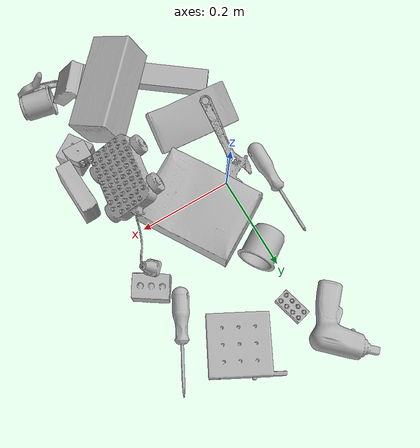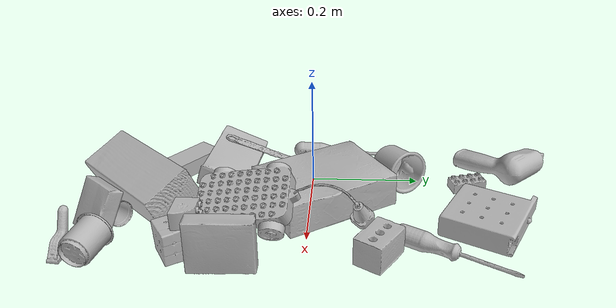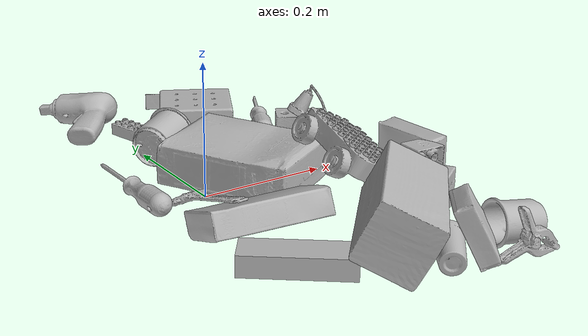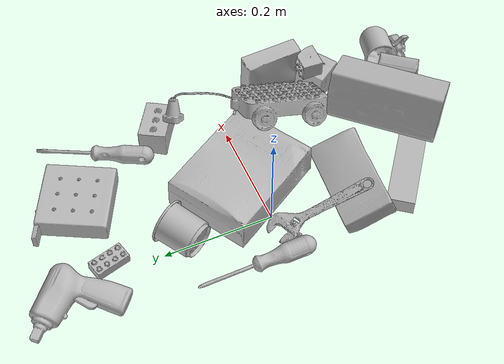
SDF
<sdf version="1.4">
  <world name="default">
    <light name="light1" type="point">
      <pose>0 0 1 0 0 0</pose>
      <diffuse>3 3 3 1</diffuse>
      <specular>3 3 3 1</specular>
    </light>
    <light name="light2" type="point">
      <pose>0 0.5 2 0 0 0</pose>
      <diffuse>1 1 1 1</diffuse>
      <specular>1 1 1 1</specular>
    </light>
    <light name="light3" type="point">
      <pose>0 0.5 2 0 0 0</pose>
      <diffuse>3 3 3 1</diffuse>
      <specular>3 3 3 1</specular>
    </light>
    <scene>
      <ambient>0.7 0.7 0.7</ambient>
    </scene>
    <model name="box21">
      <link name="link_box21">
        <collision name="default">
          <geometry>
            <mesh>
              <uri>model://cracker_box/collision_meshes/collision.obj</uri>
              <scale>1.0 1.0 1.0</scale>
            </mesh>
          </geometry>
          <surface>
            <friction>
              <ode>
                <mu>0.5</mu>
                <mu2>0.5</mu2>
              </ode>
            </friction>
          <contact>
        <ode>
            <max_vel>0</max_vel>
            <min_depth>0.0001</min_depth>
            <kp>1e8</kp>
        </ode>
    </contact></surface>
        </collision>
        <visual name="default">
          <geometry>
            <mesh>
              <uri>model://cracker_box/visual_meshes/visual.dae</uri>
              <scale>1.0 1.0 1.0</scale>
            </mesh>
          </geometry>
        </visual>
        <inertial>
          <mass>2.967785358428955</mass>
          <pose>0.0009464151808060706 0.00025434247800149024 -0.0017029535956680775 -0.0003162076618733006 -0.011106490531610344 0.00254679570085012</pose>
          <inertia>
            <ixx>0.0075487206</ixx>
            <iyy>0.012464421</iyy>
            <izz>0.017787872</izz>
            <ixy>0</ixy>
            <ixz>0</ixz>
            <iyz>0</iyz>
          </inertia>
        </inertial>
      </link>
      <pose>0.0809539332985878 0.022818230092525482 0.03648179769515991 -0.011788515821407993 -0.007367166360149208 2.108229948049238</pose>
    </model>
    <model name="box22">
      <link name="link_box22">
        <collision name="default">
          <geometry>
            <mesh>
              <uri>model://rubiks_cube/collision_meshes/collision.obj</uri>
              <scale>1.0 1.0 1.0</scale>
            </mesh>
          </geometry>
          <surface>
            <friction>
              <ode>
                <mu>0.5</mu>
                <mu2>0.5</mu2>
              </ode>
            </friction>
          <contact>
        <ode>
            <max_vel>0</max_vel>
            <min_depth>0.0001</min_depth>
            <kp>1e8</kp>
        </ode>
    </contact></surface>
        </collision>
        <visual name="default">
          <geometry>
            <mesh>
              <uri>model://rubiks_cube/visual_meshes/visual.dae</uri>
              <scale>1.0 1.0 1.0</scale>
            </mesh>
          </geometry>
        </visual>
        <inertial>
          <mass>0.2631562352180481</mass>
          <pose>2.6721041649580002e-05 5.2569666877388954e-05 -7.264316082000732e-06 -0.05467275409565722 -0.09814109117242276 -0.03445701547045584</pose>
          <inertia>
            <ixx>0.0001454115</ixx>
            <iyy>0.00014473335</iyy>
            <izz>0.00014661645</izz>
            <ixy>0</ixy>
            <ixz>0</ixz>
            <iyz>0</iyz>
          </inertia>
        </inertial>
      </link>
      <pose>0.24443329870700836 -0.20459626615047455 0.02905971370637417 -3.134143242042474 0.010888946502047534 -1.0232892608926905</pose>
    </model>
    <model name="box23">
      <link name="link_box23">
        <collision name="default">
          <geometry>
            <mesh>
              <uri>model://pudding_box/collision_meshes/collision.obj</uri>
              <scale>1.0 1.0 1.0</scale>
            </mesh>
          </geometry>
          <surface>
            <friction>
              <ode>
                <mu>0.5</mu>
                <mu2>0.5</mu2>
              </ode>
            </friction>
          <contact>
        <ode>
            <max_vel>0</max_vel>
            <min_depth>0.0001</min_depth>
            <kp>1e8</kp>
        </ode>
    </contact></surface>
        </collision>
        <visual name="default">
          <geometry>
            <mesh>
              <uri>model://pudding_box/visual_meshes/visual.dae</uri>
              <scale>1.0 1.0 1.0</scale>
            </mesh>
          </geometry>
        </visual>
        <inertial>
          <mass>0.41353368759155273</mass>
          <pose>0.0004894821904599667 0.0008067885646596551 -0.0005188827635720372 0.005213101814074476 -0.006603797777454713 0.020079821436089117</pose>
          <inertia>
            <ixx>0.0004674785</ixx>
            <iyy>0.00031452288</iyy>
            <izz>0.0006903542</izz>
            <ixy>0</ixy>
            <ixz>0</ixz>
            <iyz>0</iyz>
          </inertia>
        </inertial>
      </link>
      <pose>0.27904805541038513 -0.12581703066825867 0.045177754014730453 -0.41063222192331233 1.54943022781118 -0.35850538831241474</pose>
    </model>
    <model name="cup1">
      <link name="link_cup1">
        <collision name="default">
          <geometry>
            <mesh>
              <uri>model://cup_small/collision_meshes/collision.obj</uri>
              <scale>1.0 1.0 1.0</scale>
            </mesh>
          </geometry>
          <surface>
            <friction>
              <ode>
                <mu>0.5</mu>
                <mu2>0.5</mu2>
              </ode>
            </friction>
          <contact>
        <ode>
            <max_vel>0</max_vel>
            <min_depth>0.0001</min_depth>
            <kp>1e8</kp>
        </ode>
    </contact></surface>
        </collision>
        <visual name="default">
          <geometry>
            <mesh>
              <uri>model://cup_small/visual_meshes/visual.dae</uri>
              <scale>1.0 1.0 1.0</scale>
            </mesh>
          </geometry>
        </visual>
        <inertial>
          <mass>0.02095564641058445</mass>
          <pose>0.00010482477955520153 -0.0003377848770469427 -0.01074282731860876 -0.011492722259696445 -0.015280529703091471 -0.5058449819350237</pose>
          <inertia>
            <ixx>1.2338362e-05</ixx>
            <iyy>1.240201e-05</iyy>
            <izz>5.5708097e-06</izz>
            <ixy>0</ixy>
            <ixz>0</ixz>
            <iyz>0</iyz>
          </inertia>
        </inertial>
      </link>
      <pose>0.14944078028202057 -0.3445887565612793 0.020297683775424957 1.4441641569470771 -0.9308892509139646 2.589920613848791</pose>
    </model>
    <model name="cup2">
      <link name="link_cup2">
        <collision name="default">
          <geometry>
            <mesh>
              <uri>model://c_cups/collision_meshes/collision.obj</uri>
              <scale>1.0 1.0 1.0</scale>
            </mesh>
          </geometry>
          <surface>
            <friction>
              <ode>
                <mu>0.5</mu>
                <mu2>0.5</mu2>
              </ode>
            </friction>
          <contact>
        <ode>
            <max_vel>0</max_vel>
            <min_depth>0.0001</min_depth>
            <kp>1e8</kp>
        </ode>
    </contact></surface>
        </collision>
        <visual name="default">
          <geometry>
            <mesh>
              <uri>model://c_cups/visual_meshes/visual.dae</uri>
              <scale>1.0 1.0 1.0</scale>
            </mesh>
          </geometry>
        </visual>
        <inertial>
          <mass>0.04905003309249878</mass>
          <pose>0.0007237255922518671 0.0020153908990323544 -0.0012750986497849226 0.30215813246853196 0.013461388587527759 -0.08771773533446486</pose>
          <inertia>
            <ixx>3.6477843e-05</ixx>
            <iyy>3.583322e-05</iyy>
            <izz>3.225985e-05</izz>
            <ixy>0</ixy>
            <ixz>0</ixz>
            <iyz>0</iyz>
          </inertia>
        </inertial>
      </link>
      <pose>0.2614472210407257 -0.34512194991111755 0.030087359249591827 -1.4800407041202195 0.49200176037530785 1.3840070690815183</pose>
    </model>
    <model name="box11">
      <link name="link_box11">
        <collision name="default">
          <geometry>
            <mesh>
              <uri>model://sugar_box/collision_meshes/collision.obj</uri>
              <scale>1.0 1.0 1.0</scale>
            </mesh>
          </geometry>
          <surface>
            <friction>
              <ode>
                <mu>0.5</mu>
                <mu2>0.5</mu2>
              </ode>
            </friction>
          <contact>
        <ode>
            <max_vel>0</max_vel>
            <min_depth>0.0001</min_depth>
            <kp>1e8</kp>
        </ode>
    </contact></surface>
        </collision>
        <visual name="default">
          <geometry>
            <mesh>
              <uri>model://sugar_box/visual_meshes/visual.dae</uri>
              <scale>1.0 1.0 1.0</scale>
            </mesh>
          </geometry>
        </visual>
        <inertial>
          <mass>0.9405714869499207</mass>
          <pose>0.0010343727190047503 3.849109634757042e-05 -0.0003636480832938105 -0.00040462618385709627 0.0010506635220579009 0.0026153790218148127</pose>
          <inertia>
            <ixx>0.0007836817</ixx>
            <iyy>0.0025330195</iyy>
            <izz>0.0030323272</izz>
            <ixy>0</ixy>
            <ixz>0</ixz>
            <iyz>0</iyz>
          </inertia>
        </inertial>
      </link>
      <pose>-0.00577582186087966 -0.1527029275894165 0.033721569925546646 2.7738214517520245 -0.0011422616210493427 -0.07898842150599392</pose>
    </model>
    <model name="box12">
      <link name="link_box12">
        <collision name="default">
          <geometry>
            <mesh>
              <uri>model://jenga/collision_meshes/collision.obj</uri>
              <scale>1.0 1.0 1.0</scale>
            </mesh>
          </geometry>
          <surface>
            <friction>
              <ode>
                <mu>0.5</mu>
                <mu2>0.5</mu2>
              </ode>
            </friction>
          <contact>
        <ode>
            <max_vel>0</max_vel>
            <min_depth>0.0001</min_depth>
            <kp>1e8</kp>
        </ode>
    </contact></surface>
        </collision>
        <visual name="default">
          <geometry>
            <mesh>
              <uri>model://jenga/visual_meshes/visual.dae</uri>
              <scale>1.0 1.0 1.0</scale>
            </mesh>
          </geometry>
        </visual>
        <inertial>
          <mass>0.2285791039466858</mass>
          <pose>-2.502855807051674e-07 -0.00010250010382151231 -4.0923405322246253e-05 0.0 -7.342155186052628e-07 0.0</pose>
          <inertia>
            <ixx>6.3253385e-05</ixx>
            <iyy>0.00042860323</iyy>
            <izz>0.00045757034</izz>
            <ixy>0</ixy>
            <ixz>0</ixz>
            <iyz>0</iyz>
          </inertia>
        </inertial>
      </link>
      <pose>-0.018407410010695457 -0.2568318843841553 0.014995574951171875 0.00018039134678915348 5.1009663791325324e-05 2.4923606990687017</pose>
    </model>
    <model name="box13">
      <link name="link_box13">
        <collision name="default">
          <geometry>
            <mesh>
              <uri>model://wood_block/collision_meshes/collision.obj</uri>
              <scale>1.0 1.0 1.0</scale>
            </mesh>
          </geometry>
          <surface>
            <friction>
              <ode>
                <mu>0.5</mu>
                <mu2>0.5</mu2>
              </ode>
            </friction>
          <contact>
        <ode>
            <max_vel>0</max_vel>
            <min_depth>0.0001</min_depth>
            <kp>1e8</kp>
        </ode>
    </contact></surface>
        </collision>
        <visual name="default">
          <geometry>
            <mesh>
              <uri>model://wood_block/visual_meshes/visual.dae</uri>
              <scale>1.0 1.0 1.0</scale>
            </mesh>
          </geometry>
        </visual>
        <inertial>
          <mass>1.608048677444458</mass>
          <pose>-5.813315056002466e-06 -0.000570809468626976 0.0002640858292579651 -0.05220975529066727 -0.005192695547513155 -0.006861377927637377</pose>
          <inertia>
            <ixx>0.002151813</ixx>
            <iyy>0.006797577</iyy>
            <izz>0.0067721503</izz>
            <ixy>0</ixy>
            <ixz>0</ixz>
            <iyz>0</iyz>
          </inertia>
        </inertial>
      </link>
      <pose>0.11862986534833908 -0.28630781173706055 0.058102384209632874 2.003411228184389 -0.007635107815542558 0.8220500090027191</pose>
    </model>
    <model name="box14">
      <link name="link_box14">
        <collision name="default">
          <geometry>
            <mesh>
              <uri>model://gelatin_box/collision_meshes/collision.obj</uri>
              <scale>1.0 1.0 1.0</scale>
            </mesh>
          </geometry>
          <surface>
            <friction>
              <ode>
                <mu>0.5</mu>
                <mu2>0.5</mu2>
              </ode>
            </friction>
          <contact>
        <ode>
            <max_vel>0</max_vel>
            <min_depth>0.0001</min_depth>
            <kp>1e8</kp>
        </ode>
    </contact></surface>
        </collision>
        <visual name="default">
          <geometry>
            <mesh>
              <uri>model://gelatin_box/visual_meshes/visual.dae</uri>
              <scale>1.0 1.0 1.0</scale>
            </mesh>
          </geometry>
        </visual>
        <inertial>
          <mass>0.228233203291893</mass>
          <pose>0.0004319618456065655 0.00011156871914863586 -0.0003640321083366871 -0.0010503721031013481 -0.004755817754301117 0.016440566922732165</pose>
          <inertia>
            <ixx>0.000161114</ixx>
            <iyy>0.0001150829</iyy>
            <izz>0.0002452514</izz>
            <ixy>0</ixy>
            <ixz>0</ixz>
            <iyz>0</iyz>
          </inertia>
        </inertial>
      </link>
      <pose>0.1851140856742859 -0.3495940566062927 0.043657124042510986 1.0835219680273005 0.02441642594056875 0.8749113495847531</pose>
    </model>
    <model name="cup15">
      <link name="link_cup15">
        <collision name="default">
          <geometry>
            <mesh>
              <uri>model://f_cups/collision_meshes/collision.obj</uri>
              <scale>1.0 1.0 1.0</scale>
            </mesh>
          </geometry>
          <surface>
            <friction>
              <ode>
                <mu>0.5</mu>
                <mu2>0.5</mu2>
              </ode>
            </friction>
          <contact>
        <ode>
            <max_vel>0</max_vel>
            <min_depth>0.0001</min_depth>
            <kp>1e8</kp>
        </ode>
    </contact></surface>
        </collision>
        <visual name="default">
          <geometry>
            <mesh>
              <uri>model://f_cups/visual_meshes/visual.dae</uri>
              <scale>1.0 1.0 1.0</scale>
            </mesh>
          </geometry>
        </visual>
        <inertial>
          <mass>0.05267045274376869</mass>
          <pose>-0.003171468386426568 -0.0006240073125809431 -0.003655537962913513 0.7862325736201227 -0.2607934836260618 -0.18237270236977254</pose>
          <inertia>
            <ixx>4.9511644e-05</ixx>
            <iyy>5.193826e-05</iyy>
            <izz>5.4069198e-05</izz>
            <ixy>0</ixy>
            <ixz>0</ixz>
            <iyz>0</iyz>
          </inertia>
        </inertial>
      </link>
      <pose>0.012047447264194489 0.1597590297460556 0.037171244621276855 1.4682558007735913 -0.3147133698022027 2.172382606719556</pose>
    </model>
    <model name="toy1">
      <link name="link_toy1">
        <collision name="default">
          <geometry>
            <mesh>
              <uri>model://g_lego_duplo/collision_meshes/collision.obj</uri>
              <scale>1.0 1.0 1.0</scale>
            </mesh>
          </geometry>
          <surface>
            <friction>
              <ode>
                <mu>0.5</mu>
                <mu2>0.5</mu2>
              </ode>
            </friction>
          <contact>
        <ode>
            <max_vel>0</max_vel>
            <min_depth>0.0001</min_depth>
            <kp>1e8</kp>
        </ode>
    </contact></surface>
        </collision>
        <visual name="default">
          <geometry>
            <mesh>
              <uri>model://g_lego_duplo/visual_meshes/visual.dae</uri>
              <scale>1.0 1.0 1.0</scale>
            </mesh>
          </geometry>
        </visual>
        <inertial>
          <mass>0.5557854771614075</mass>
          <pose>-0.050047677010297775 0.0017554635414853692 0.0038806761149317026 0.01096300832625367 0.038108254431045284 -0.0965302354071939</pose>
          <inertia>
            <ixx>0.0008053398</ixx>
            <iyy>0.0024348022</iyy>
            <izz>0.003046027</izz>
            <ixy>0</ixy>
            <ixz>0</ixz>
            <iyz>0</iyz>
          </inertia>
        </inertial>
      </link>
      <pose>0.1966426819562912 -0.04112791642546654 0.07401792705059052 0.4998626852405425 -0.19411054685607598 1.428477195483819</pose>
    </model>
    <model name="toy2">
      <link name="link_toy2">
        <collision name="default">
          <geometry>
            <mesh>
              <uri>model://b_toy_airplane/collision_meshes/collision.obj</uri>
              <scale>1.0 1.0 1.0</scale>
            </mesh>
          </geometry>
          <surface>
            <friction>
              <ode>
                <mu>0.5</mu>
                <mu2>0.5</mu2>
              </ode>
            </friction>
          <contact>
        <ode>
            <max_vel>0</max_vel>
            <min_depth>0.0001</min_depth>
            <kp>1e8</kp>
        </ode>
    </contact></surface>
        </collision>
        <visual name="default">
          <geometry>
            <mesh>
              <uri>model://b_toy_airplane/visual_meshes/visual.dae</uri>
              <scale>1.0 1.0 1.0</scale>
            </mesh>
          </geometry>
        </visual>
        <inertial>
          <mass>0.5134223699569702</mass>
          <pose>0.00508136348798871 0.004015584941953421 0.009543065913021564 -0.0400181167848636 -0.04022184003740235 -0.5601502230799963</pose>
          <inertia>
            <ixx>0.00095317804</ixx>
            <iyy>0.00038099466</iyy>
            <izz>0.0011858484</izz>
            <ixy>0</ixy>
            <ixz>0</ixz>
            <iyz>0</iyz>
          </inertia>
        </inertial>
      </link>
      <pose>-0.025806982070207596 0.3659641444683075 0.03568907082080841 3.06957090379014 0.07405950744747025 2.3915259067949663</pose>
    </model>
    <model name="toy3">
      <link name="link_toy3">
        <collision name="default">
          <geometry>
            <mesh>
              <uri>model://foam_brick/collision_meshes/collision.obj</uri>
              <scale>1.0 1.0 1.0</scale>
            </mesh>
          </geometry>
          <surface>
            <friction>
              <ode>
                <mu>0.5</mu>
                <mu2>0.5</mu2>
              </ode>
            </friction>
          <contact>
        <ode>
            <max_vel>0</max_vel>
            <min_depth>0.0001</min_depth>
            <kp>1e8</kp>
        </ode>
    </contact></surface>
        </collision>
        <visual name="default">
          <geometry>
            <mesh>
              <uri>model://foam_brick/visual_meshes/visual.dae</uri>
              <scale>1.0 1.0 1.0</scale>
            </mesh>
          </geometry>
        </visual>
        <inertial>
          <mass>0.10737738013267517</mass>
          <pose>-0.0002522472059354186 0.00034584314562380314 -0.0002532101352699101 -0.29401713280371045 0.01727443708188723 -0.0007449863066790336</pose>
          <inertia>
            <ixx>4.6904443e-05</ixx>
            <iyy>7.488536e-05</iyy>
            <izz>7.583706e-05</izz>
            <ixy>0</ixy>
            <ixz>0</ixz>
            <iyz>0</iyz>
          </inertia>
        </inertial>
      </link>
      <pose>0.24699673056602478 0.11838200688362122 0.02592286840081215 0.013441739871247861 0.00416037897215772 2.5704074629110485</pose>
    </model>
    <model name="toy4">
      <link name="link_toy4">
        <collision name="default">
          <geometry>
            <mesh>
              <uri>model://c_lego_duplo/collision_meshes/collision.obj</uri>
              <scale>1.0 1.0 1.0</scale>
            </mesh>
          </geometry>
          <surface>
            <friction>
              <ode>
                <mu>0.5</mu>
                <mu2>0.5</mu2>
              </ode>
            </friction>
          <contact>
        <ode>
            <max_vel>0</max_vel>
            <min_depth>0.0001</min_depth>
            <kp>1e8</kp>
        </ode>
    </contact></surface>
        </collision>
        <visual name="default">
          <geometry>
            <mesh>
              <uri>model://c_lego_duplo/visual_meshes/visual.dae</uri>
              <scale>1.0 1.0 1.0</scale>
            </mesh>
          </geometry>
        </visual>
        <inertial>
          <mass>0.0418582409620285</mass>
          <pose>0.00031645974377170205 0.00019464627257548273 0.0010453157592564821 -0.011520806412656213 0.005900100982121691 0.03110035028309464</pose>
          <inertia>
            <ixx>1.6107831e-05</ixx>
            <iyy>5.145423e-06</iyy>
            <izz>1.8823655e-05</izz>
            <ixy>0</ixy>
            <ixz>0</ixz>
            <iyz>0</iyz>
          </inertia>
        </inertial>
      </link>
      <pose>0.022260870784521103 0.29116082191467285 0.011981485411524773 0.008019328360259436 -0.0020915785883708947 0.2375321948087371</pose>
    </model>
    <model name="toy5">
      <link name="link_toy5">
        <collision name="default">
          <geometry>
            <mesh>
              <uri>model://nine_hole_peg_test/collision_meshes/collision.obj</uri>
              <scale>1.0 1.0 1.0</scale>
            </mesh>
          </geometry>
          <surface>
            <friction>
              <ode>
                <mu>0.5</mu>
                <mu2>0.5</mu2>
              </ode>
            </friction>
          <contact>
        <ode>
            <max_vel>0</max_vel>
            <min_depth>0.0001</min_depth>
            <kp>1e8</kp>
        </ode>
    </contact></surface>
        </collision>
        <visual name="default">
          <geometry>
            <mesh>
              <uri>model://nine_hole_peg_test/visual_meshes/visual.dae</uri>
              <scale>1.0 1.0 1.0</scale>
            </mesh>
          </geometry>
        </visual>
        <inertial>
          <mass>0.44585999846458435</mass>
          <pose>-0.004617387428879738 -0.009647615253925323 2.6460689696250483e-05 -0.001466677754783098 0.0007194209279192062 -0.6342398490080472</pose>
          <inertia>
            <ixx>0.0006971755</ixx>
            <iyy>0.0006509454</iyy>
            <izz>0.0012216569</izz>
            <ixy>0</ixy>
            <ixz>0</ixz>
            <iyz>0</iyz>
          </inertia>
        </inertial>
      </link>
      <pose>0.14819467067718506 0.31239643692970276 0.020771007984876633 -1.4913628861867966e-08 1.294953831392475e-08 1.09248329197725</pose>
    </model>
    <model name="toy6">
      <link name="link_toy6">
        <collision name="default">
          <geometry>
            <mesh>
              <uri>model://d_lego_duplo/collision_meshes/collision.obj</uri>
              <scale>1.0 1.0 1.0</scale>
            </mesh>
          </geometry>
          <surface>
            <friction>
              <ode>
                <mu>0.5</mu>
                <mu2>0.5</mu2>
              </ode>
            </friction>
          <contact>
        <ode>
            <max_vel>0</max_vel>
            <min_depth>0.0001</min_depth>
            <kp>1e8</kp>
        </ode>
    </contact></surface>
        </collision>
        <visual name="default">
          <geometry>
            <mesh>
              <uri>model://d_lego_duplo/visual_meshes/visual.dae</uri>
              <scale>1.0 1.0 1.0</scale>
            </mesh>
          </geometry>
        </visual>
        <inertial>
          <mass>0.03287249803543091</mass>
          <pose>0.00283056334592402 0.0001636616507312283 0.000858980929479003 0.08010843587180921 -0.38355193616427774 0.0010296778305230027</pose>
          <inertia>
            <ixx>6.363631e-06</ixx>
            <iyy>9.031719e-06</iyy>
            <izz>8.709827e-06</izz>
            <ixy>0</ixy>
            <ixz>0</ixz>
            <iyz>0</iyz>
          </inertia>
        </inertial>
      </link>
      <pose>0.24337056279182434 -0.18291272222995758 0.07427758723497391 1.566196808909303 -0.012779221511267258 3.115037898684345</pose>
    </model>
    <model name="hardware1">
      <link name="link_hardware1">
        <collision name="default">
          <geometry>
            <mesh>
              <uri>model://phillips_screwdriver/collision_meshes/collision.obj</uri>
              <scale>1.0 1.0 1.0</scale>
            </mesh>
          </geometry>
          <surface>
            <friction>
              <ode>
                <mu>0.5</mu>
                <mu2>0.5</mu2>
              </ode>
            </friction>
          <contact>
        <ode>
            <max_vel>0</max_vel>
            <min_depth>0.0001</min_depth>
            <kp>1e8</kp>
        </ode>
    </contact></surface>
        </collision>
        <visual name="default">
          <geometry>
            <mesh>
              <uri>model://phillips_screwdriver/visual_meshes/visual.dae</uri>
              <scale>1.0 1.0 1.0</scale>
            </mesh>
          </geometry>
        </visual>
        <inertial>
          <mass>0.05929635465145111</mass>
          <pose>-0.04777182266116142 0.0010362300090491772 -0.00045555492397397757 -0.15720933335137202 0.005850991845378533 -0.002156742438797471</pose>
          <inertia>
            <ixx>6.9667135e-06</ixx>
            <iyy>8.735042e-05</iyy>
            <izz>8.742465e-05</izz>
            <ixy>0</ixy>
            <ixz>0</ixz>
            <iyz>0</iyz>
          </inertia>
        </inertial>
      </link>
      <pose>-0.08548708260059357 0.06228464096784592 0.015812024474143982 -0.329301466237474 0.036284432863190094 1.566781972611526</pose>
    </model>
    <model name="hardware2">
      <link name="link_hardware2">
        <collision name="default">
          <geometry>
            <mesh>
              <uri>model://flat_screwdriver/collision_meshes/collision.obj</uri>
              <scale>1.0 1.0 1.0</scale>
            </mesh>
          </geometry>
          <surface>
            <friction>
              <ode>
                <mu>0.5</mu>
                <mu2>0.5</mu2>
              </ode>
            </friction>
          <contact>
        <ode>
            <max_vel>0</max_vel>
            <min_depth>0.0001</min_depth>
            <kp>1e8</kp>
        </ode>
    </contact></surface>
        </collision>
        <visual name="default">
          <geometry>
            <mesh>
              <uri>model://flat_screwdriver/visual_meshes/visual.dae</uri>
              <scale>1.0 1.0 1.0</scale>
            </mesh>
          </geometry>
        </visual>
        <inertial>
          <mass>0.08023945242166519</mass>
          <pose>-0.0489187017083168 -0.0006576800369657576 -0.000614091579336673 -0.561358306335632 -0.0032337267228942767 0.006982275729110292</pose>
          <inertia>
            <ixx>9.4802335e-06</ixx>
            <iyy>0.00012035375</iyy>
            <izz>0.00012029803</izz>
            <ixy>0</ixy>
            <ixz>0</ixz>
            <iyz>0</iyz>
          </inertia>
        </inertial>
      </link>
      <pose>0.24667127430438995 0.23700860142707825 0.015210788697004318 1.7961436088071785 0.038822309410528846 1.0858965852399813</pose>
    </model>
    <model name="hardware3">
      <link name="link_hardware3">
        <collision name="default">
          <geometry>
            <mesh>
              <uri>model://medium_clamp/collision_meshes/collision.obj</uri>
              <scale>1.0 1.0 1.0</scale>
            </mesh>
          </geometry>
          <surface>
            <friction>
              <ode>
                <mu>0.5</mu>
                <mu2>0.5</mu2>
              </ode>
            </friction>
          <contact>
        <ode>
            <max_vel>0</max_vel>
            <min_depth>0.0001</min_depth>
            <kp>1e8</kp>
        </ode>
    </contact></surface>
        </collision>
        <visual name="default">
          <geometry>
            <mesh>
              <uri>model://medium_clamp/visual_meshes/visual.dae</uri>
              <scale>1.0 1.0 1.0</scale>
            </mesh>
          </geometry>
        </visual>
        <inertial>
          <mass>0.025976430624723434</mass>
          <pose>0.0053909942507743835 0.0003953239065594971 -0.0001222159480676055 -0.001226907020768324 0.0025845009771016812 0.038207788380880015</pose>
          <inertia>
            <ixx>7.0769133e-06</ixx>
            <iyy>1.02989125e-05</iyy>
            <izz>1.5863408e-05</izz>
            <ixy>0</ixy>
            <ixz>0</ixz>
            <iyz>0</iyz>
          </inertia>
        </inertial>
      </link>
      <pose>0.2466161996126175 -0.3851314187049866 0.024362551048398018 1.5766407477480038 0.39346421259467956 -0.10420300533169093</pose>
    </model>
    <model name="hardware4">
      <link name="link_hardware4">
        <collision name="default">
          <geometry>
            <mesh>
              <uri>model://adjustable_wrench/collision_meshes/collision.obj</uri>
              <scale>1.0 1.0 1.0</scale>
            </mesh>
          </geometry>
          <surface>
            <friction>
              <ode>
                <mu>0.5</mu>
                <mu2>0.5</mu2>
              </ode>
            </friction>
          <contact>
        <ode>
            <max_vel>0</max_vel>
            <min_depth>0.0001</min_depth>
            <kp>1e8</kp>
        </ode>
    </contact></surface>
        </collision>
        <visual name="default">
          <geometry>
            <mesh>
              <uri>model://adjustable_wrench/visual_meshes/visual.dae</uri>
              <scale>1.0 1.0 1.0</scale>
            </mesh>
          </geometry>
        </visual>
        <inertial>
          <mass>0.023418840020895004</mass>
          <pose>0.03740980848670006 -0.00289688678458333 -0.0011149229248985648 -0.014473354604289867 0.006656022134877207 -0.010954199158636425</pose>
          <inertia>
            <ixx>4.793005e-06</ixx>
            <iyy>5.609652e-05</iyy>
            <izz>6.0634928e-05</izz>
            <ixy>0</ixy>
            <ixz>0</ixz>
            <iyz>0</iyz>
          </inertia>
        </inertial>
      </link>
      <pose>-0.04005832225084305 -0.0723540335893631 0.03381757810711861 -0.05720221278712745 0.3332681751167253 1.4976860312533562</pose>
    </model>
  <physics type="ode">
      <max_contacts>50</max_contacts>
      <ode>
        <solver>
          <type>quick</type>
          <iters>75</iters>
        </solver>
        <constraints>
          <contact_max_correcting_vel>0</contact_max_correcting_vel>
          <contact_surface_layer>0</contact_surface_layer>
        </constraints>
      </ode>
    </physics></world>
</sdf>
